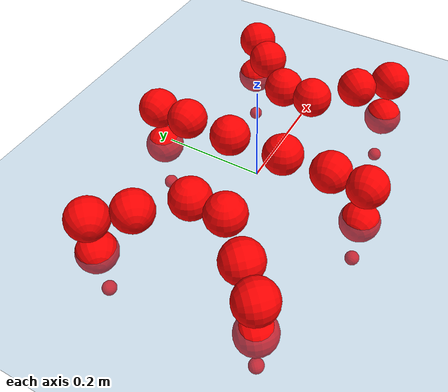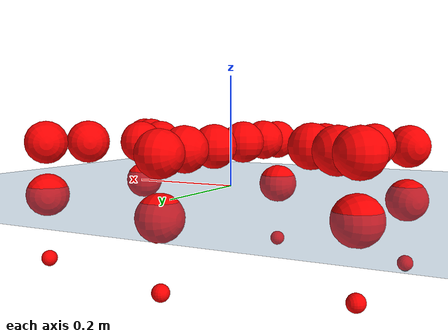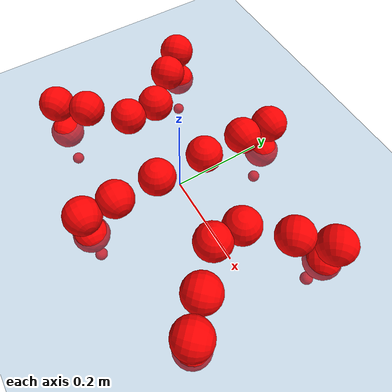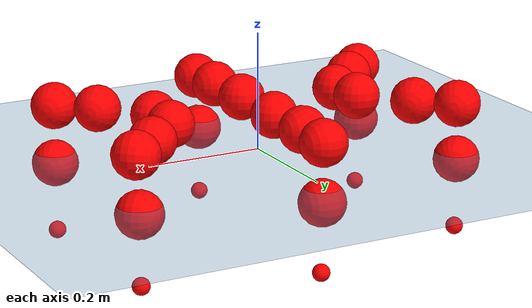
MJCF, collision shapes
<mujoco model="Golem">
  <compiler angle="radian" assetdir="assets" balanceinertia="true" inertiafromgeom="false"/>

  <option timestep="0.005" density="1.2" viscosity="2e-05"/>

  <size nkey="1"/>

  <visual>
    <quality shadowsize="8192"/>
    <map shadowclip="0.5"/>
  </visual>

  <default>
    <default class="/">
      <joint armature="0.01" damping="0.01" frictionloss="0.01"/>
      <geom contype="0" conaffinity="0" group="1" solref="-1000 -80"/>
      <site size="0.01 0.005 0.005" group="5"/>
      <general forcelimited="true" biastype="affine" gainprm="25" biasprm="0 -25 -0.5"/>
      <default class="visual">
        <geom type="mesh" group="2"/>
      </default>
      <default class="collision">
        <geom group="3"/>
      </default>
      <default class="foot">
        <geom size="0.01 0 0" condim="6" group="4" priority="1" solimp="0.015 1 0.01"/>
      </default>
      <default class="reward_collision_sphere">
        <geom group="5" rgba="1 0 0 1"/>
      </default>
    </default>
  </default>

  <asset>
    <texture type="skybox" colorspace="auto" name="//unnamed_texture_0" builtin="gradient" rgb1="0.95 0.95 0.95" rgb2="0.95 0.95 0.95" width="100" height="600"/>
    <texture type="2d" colorspace="auto" name="texplane" builtin="checker" rgb1="0.345 0.575 0.748" rgb2="0.345 0.575 0.748" markrgb="1 1 1" width="512" height="512"/>
    <material name="MatPlane" class="/" texture="texplane" texuniform="true" texrepeat="2 2" specular="0.9"/>
    <mesh name="body" class="/" file="body.stl" scale="0.001 0.001 0.001"/>
    <mesh name="coxa" class="/" file="coxa.stl" scale="0.001 0.001 0.001"/>
    <mesh name="femur" class="/" file="femur.stl" scale="0.001 0.001 0.001"/>
    <mesh name="tibia" class="/" file="tibia.stl" scale="0.001 0.001 0.001"/>
    <mesh name="tarsus" class="/" file="tarsus.stl" scale="0.001 0.001 0.001"/>
  </asset>

  <worldbody>
    <geom name="floor" class="/" size="100 100 0.125" type="plane" group="0" material="MatPlane"/>
    <light name="toplight_shadow" class="/" pos="0 0 5" dir="0.0990148 0.0990148 -0.990148" type="directional" ambient="0.04 0.04 0.04" diffuse="0.55 0.55 0.55" specular="0.12 0.12 0.12"/>
    <light name="toplight_fill" class="/" pos="0 0 5" dir="0.0990148 0.0990148 -0.990148" type="directional" castshadow="false" ambient="0.04 0.04 0.04" diffuse="0.3 0.3 0.3" specular="0.08 0.08 0.08"/>
    <body name="trunk" pos="0.00269939 0.000791154 0.00265506" quat="1 -0.000271188 -0.000335723 0.000203449">
      <inertial pos="-0.00218949 -0.00204133 -0.000731011" quat="0.999997 0.000321855 -0.00227249 -1.19194e-05" mass="3.61093" diaginertia="0.0157881 0.0014218 0.0216051"/>
      <joint name="//unnamed_joint_0" type="free"/>
      <geom name="//unnamed_geom_1" class="/" pos="0 0 0.0743502" quat="1 0 0 0" type="mesh" rgba="0.9 0.9 0.9 1" mesh="body"/>
      <site name="imu" class="/" pos="0.142402 -0.0124298 0.116218" size="0.00979027"/>
      <camera name="track" class="/" pos="0 -1.35259 0" quat="0.707107 0.707107 0 0" mode="trackcom"/>
      <camera name="ego_camera" class="/" pos="0.142878 0 0.116172" quat="-0.5 -0.5 0.5 0.5"/>
      <body name="coxa_RR" pos="-0.193784 -0.0564538 0.0741609" quat="0.383117 0.000168354 -0.000240213 -0.9237">
        <inertial pos="-0.000388343 0.000155368 0.000335001" quat="0.999903 -0.000125676 0.0036524 0.0134652" mass="0.193769" diaginertia="0.0163566 0.00138269 0.021204"/>
        <joint name="coxa_joint_RR" class="/" pos="0 0 0" axis="0.00064819 -0.000651367 -1" stiffness="0.00724825" range="-3.09952 3.14653" armature="0.00979503" damping="0.0102299" frictionloss="0.00948494"/>
        <geom name="//unnamed_geom_2" class="/" type="mesh" rgba="0.2 0.2 0.2 1" mesh="coxa"/>
        <geom name="//unnamed_geom_3" class="reward_collision_sphere" size="0.0391611" pos="-0.0329719 0 0"/>
        <body name="femur_RR" pos="0.0648008 0.00136128 -0.00112697" quat="0.499934 -0.500082 0.499716 0.500268">
          <inertial pos="-0.00195341 0.000857164 -0.00169621" quat="1 -0.000129541 -0.000637751 -0.000265473" mass="0.189192" diaginertia="0.0161647 0.00142385 0.0213133"/>
          <joint name="femur_joint_RR" class="/" pos="0 0 0" axis="-0.000264767 0.00465512 -0.999989" stiffness="0.0012797" range="-3.18854 3.1934" armature="0.00861126" damping="0.00136264" frictionloss="0.00980996"/>
          <geom name="//unnamed_geom_4" class="/" type="mesh" rgba="0.9 0.9 0.9 1" mesh="femur"/>
          <geom name="//unnamed_geom_5" class="reward_collision_sphere" size="0.0391611"/>
          <body name="tibia_RR" pos="0.00359092 -0.0721561 0.00145595" quat="7.88997e-05 1 9.26161e-05 -3.5902e-05">
            <inertial pos="0.00270404 -0.00122273 0.0016198" quat="0.999905 -0.0136428 0.00132514 0.00109477" mass="0.18959" diaginertia="0.0167918 0.00149769 0.0217763"/>
            <joint name="tibia_joint_RR" class="/" pos="0 0 0" axis="0.0105304 -0.00461635 0.999934" range="-3.19595 3.15889" armature="0.00917865" damping="0.0202222" frictionloss="0.010163"/>
            <geom name="//unnamed_geom_6" class="/" type="mesh" rgba="0.2 0.2 0.2 1" mesh="tibia"/>
            <geom name="//unnamed_geom_7" class="reward_collision_sphere" size="0.0391611"/>
            <body name="tarsus_RR" pos="0.0991161 -0.000706061 -0.000708176" quat="1 -1.6333e-06 2.42958e-05 6.917e-05">
              <inertial pos="0.0687123 -0.000740244 -0.00152705" quat="0.492476 0.511447 0.498894 0.496985" mass="0.187271" diaginertia="0.0156102 0.0014522 0.021407"/>
              <joint name="tarsus_joint_RR" class="/" pos="0 0 0" axis="-0.00508244 0.00293103 0.999983" range="-3.13827 3.1379" armature="0.0110876" damping="0.040212" frictionloss="0.0111588"/>
              <geom name="//unnamed_geom_8" class="/" type="mesh" rgba="0.9 0.9 0.9 1" mesh="tarsus"/>
              <geom name="foot_1" class="foot" size="0.0106671" pos="0.123095 0 0" quat="0 -0.707107 0 0.707107"/>
              <geom name="//unnamed_geom_10" class="reward_collision_sphere" size="0.0391611"/>
              <geom name="//unnamed_geom_11" class="reward_collision_sphere" size="0.0146854" pos="0.118149 0 0"/>
              <site name="foot_1" class="foot" pos="0.123095 0 0" quat="0 -0.707107 0 0.707107" size="0.00979027"/>
            </body>
          </body>
        </body>
      </body>
      <body name="coxa_RM" pos="-0.000584786 -0.086786 0.0748057" quat="0.7071 -8.90937e-05 -3.43261e-05 -0.707114">
        <inertial pos="-0.000166172 0.00297632 0.00271637" quat="0.999987 0.000119163 -0.000332264 0.00502878" mass="0.186491" diaginertia="0.0164124 0.00146807 0.0216867"/>
        <joint name="coxa_joint_RM" class="/" pos="0 0 0" axis="0.00894811 0.00443346 -0.99995" stiffness="0.0018992" range="-3.16874 3.09406" armature="0.0101854" damping="0.0273326" frictionloss="0.0101063"/>
        <geom name="//unnamed_geom_12" class="/" type="mesh" rgba="0.2 0.2 0.2 1" mesh="coxa"/>
        <geom name="//unnamed_geom_13" class="reward_collision_sphere" size="0.0391611" pos="-0.0329719 0 0"/>
        <body name="femur_RM" pos="0.061631 0.00215579 -0.000267556" quat="0.499698 -0.499975 0.499991 0.500335">
          <inertial pos="0.00019296 -0.00295589 0.00195613" quat="0.999959 -0.00697386 -0.00493148 -0.00314475" mass="0.188947" diaginertia="0.0159048 0.00137181 0.0211788"/>
          <joint name="femur_joint_RM" class="/" pos="0 0 0" axis="-0.00829584 -0.00436966 -0.999956" range="-3.10225 3.08336" armature="0.00978705" damping="0.000646371" frictionloss="0.0102707"/>
          <geom name="//unnamed_geom_14" class="/" type="mesh" rgba="0.9 0.9 0.9 1" mesh="femur"/>
          <geom name="//unnamed_geom_15" class="reward_collision_sphere" size="0.0391611"/>
          <body name="tibia_RM" pos="0.00243718 -0.0696941 0.000146265" quat="-3.29691e-05 1 -0.000147946 0.00020468">
            <inertial pos="0.000133983 -0.00055639 0.00271121" quat="0.999999 0.00072288 -0.000933202 2.3745e-05" mass="0.184944" diaginertia="0.0161489 0.00140913 0.0210463"/>
            <joint name="tibia_joint_RM" class="/" pos="0 0 0" axis="-0.00308923 -0.00110624 0.999995" stiffness="0.000219644" range="-3.15748 3.196" armature="0.0112437" damping="0.0102147" frictionloss="0.0111073"/>
            <geom name="//unnamed_geom_16" class="/" type="mesh" rgba="0.2 0.2 0.2 1" mesh="tibia"/>
            <geom name="//unnamed_geom_17" class="reward_collision_sphere" size="0.0391611"/>
            <body name="tarsus_RM" pos="0.0936516 -0.00133308 0.00271429" quat="1 -8.0935e-05 -7.31581e-06 -0.000932241">
              <inertial pos="0.0668818 0.000386691 -0.000680304" quat="0.499773 0.499517 0.500549 0.500161" mass="0.193152" diaginertia="0.0170932 0.00143974 0.0216707"/>
              <joint name="tarsus_joint_RM" class="/" pos="0 0 0" axis="0.00646751 0.00377808 0.999972" range="-3.14423 3.16071" armature="0.00938359" damping="0.0120705" frictionloss="0.00983388"/>
              <geom name="//unnamed_geom_18" class="/" type="mesh" rgba="0.9 0.9 0.9 1" mesh="tarsus"/>
              <geom name="foot_2" class="foot" size="0.00916161" pos="0.123095 0 0" quat="0 -0.707107 0 0.707107"/>
              <geom name="//unnamed_geom_20" class="reward_collision_sphere" size="0.0391611"/>
              <geom name="//unnamed_geom_21" class="reward_collision_sphere" size="0.0146854" pos="0.118149 0 0"/>
              <site name="foot_2" class="foot" pos="0.123095 0 0" quat="0 -0.707107 0 0.707107" size="0.00979027"/>
            </body>
          </body>
        </body>
      </body>
      <body name="coxa_RF" pos="0.195934 -0.054529 0.0740419" quat="0.923905 -2.19618e-05 0.00016198 -0.382623">
        <inertial pos="0.00137494 0.000587944 0.000237811" quat="0.999998 0.00178332 -0.000396891 0.000890207" mass="0.190066" diaginertia="0.0161292 0.00144567 0.0209749"/>
        <joint name="coxa_joint_RF" class="/" pos="0 0 0" axis="-0.000975573 -0.00337859 -0.999994" range="-3.19113 3.13518" armature="0.0082945" damping="0.0194303" frictionloss="0.00993767"/>
        <geom name="//unnamed_geom_22" class="/" type="mesh" rgba="0.2 0.2 0.2 1" mesh="coxa"/>
        <geom name="//unnamed_geom_23" class="reward_collision_sphere" size="0.0391611" pos="-0.0329719 0 0"/>
        <body name="femur_RF" pos="0.0651233 0.00154661 0.00255731" quat="0.500169 -0.50014 0.499783 0.499908">
          <inertial pos="0.000774034 -0.00151678 -0.00176987" quat="0.99994 0.00742121 -0.0019282 -0.00784261" mass="0.181554" diaginertia="0.0154108 0.00139747 0.0214524"/>
          <joint name="femur_joint_RF" class="/" pos="0 0 0" axis="0.00122458 0.00125711 -0.999998" range="-3.11576 3.14663" armature="0.010876" damping="0" frictionloss="0.0110792"/>
          <geom name="//unnamed_geom_24" class="/" type="mesh" rgba="0.9 0.9 0.9 1" mesh="femur"/>
          <geom name="//unnamed_geom_25" class="reward_collision_sphere" size="0.0391611"/>
          <body name="tibia_RF" pos="0.00109526 -0.0757606 0.00210668" quat="3.13901e-07 1 -8.05846e-05 -0.000212123">
            <inertial pos="0.00247361 0.00258465 -0.0014532" quat="0.999938 0.00871621 0.00689538 0.00052733" mass="0.188411" diaginertia="0.0158651 0.00136503 0.0216015"/>
            <joint name="tibia_joint_RF" class="/" pos="0 0 0" axis="0.000769724 0.000476635 1" range="-3.14206 3.10718" armature="0.0110155" damping="0" frictionloss="0.00896471"/>
            <geom name="//unnamed_geom_26" class="/" type="mesh" rgba="0.2 0.2 0.2 1" mesh="tibia"/>
            <geom name="//unnamed_geom_27" class="reward_collision_sphere" size="0.0391611"/>
            <body name="tarsus_RF" pos="0.0988231 0.000158444 -0.00197856" quat="1 -7.89475e-05 0.000126886 -3.74792e-05">
              <inertial pos="0.0663863 -0.000142067 -0.00171651" quat="0.502782 0.499174 0.49834 0.499693" mass="0.185329" diaginertia="0.0163094 0.00143696 0.0214944"/>
              <joint name="tarsus_joint_RF" class="/" pos="0 0 0" axis="-0.00595659 0.0064603 0.999961" stiffness="0.0152584" range="-3.13483 3.13944" armature="0.00921033" damping="0.00589804" frictionloss="0.00979183"/>
              <geom name="//unnamed_geom_28" class="/" type="mesh" rgba="0.9 0.9 0.9 1" mesh="tarsus"/>
              <geom name="foot_3" class="foot" size="0.00885723" pos="0.123095 0 0" quat="0 -0.707107 0 0.707107"/>
              <geom name="//unnamed_geom_30" class="reward_collision_sphere" size="0.0391611"/>
              <geom name="//unnamed_geom_31" class="reward_collision_sphere" size="0.0146854" pos="0.118149 0 0"/>
              <site name="foot_3" class="foot" pos="0.123095 0 0" quat="0 -0.707107 0 0.707107" size="0.00979027"/>
            </body>
          </body>
        </body>
      </body>
      <body name="coxa_LR" pos="-0.195207 0.0587506 0.0767668" quat="0.381821 0.000714443 0.000645942 0.924236">
        <inertial pos="-0.0021613 8.42775e-05 0.00344636" quat="0.999962 0.00616079 -0.00590183 -0.00173926" mass="0.190231" diaginertia="0.0162046 0.00142265 0.0209138"/>
        <joint name="coxa_joint_LR" class="/" pos="0 0 0" axis="0.0115269 -0.0102859 -0.999881" range="-3.194 3.14202" armature="0.00944669" damping="0.0190616" frictionloss="0.00943198"/>
        <geom name="//unnamed_geom_32" class="/" type="mesh" rgba="0.2 0.2 0.2 1" mesh="coxa"/>
        <geom name="//unnamed_geom_33" class="reward_collision_sphere" size="0.0391611" pos="-0.0329719 0 0"/>
        <body name="femur_LR" pos="0.0651075 -0.000729141 -0.000502934" quat="0.500114 -0.500335 0.499036 0.500515">
          <inertial pos="0.00255698 -5.46984e-06 0.0015676" quat="0.999999 0.000911901 0.000216935 -0.000619073" mass="0.179573" diaginertia="0.0157257 0.00139985 0.0207314"/>
          <joint name="femur_joint_LR" class="/" pos="0 0 0" axis="0.0127709 0.0082434 0.999884" range="-3.15147 3.10405" armature="0.0109745" damping="0" frictionloss="0.00972362"/>
          <geom name="//unnamed_geom_34" class="/" type="mesh" rgba="0.9 0.9 0.9 1" mesh="femur"/>
          <geom name="//unnamed_geom_35" class="reward_collision_sphere" size="0.0391611"/>
          <body name="tibia_LR" pos="-0.00176539 -0.0741293 -0.00259289" quat="-0.0013068 0.999999 -0.000485041 -0.000345805">
            <inertial pos="0.000134545 0.000301409 0.0021151" quat="0.999911 -0.0112667 0.00439304 0.00562494" mass="0.185736" diaginertia="0.0163167 0.00144617 0.0210223"/>
            <joint name="tibia_joint_LR" class="/" pos="0 0 0" axis="0.00346177 -0.000480392 -0.999994" range="-3.17435 3.19227" armature="0.00859394" damping="0.0216516" frictionloss="0.0110565"/>
            <geom name="//unnamed_geom_36" class="/" type="mesh" rgba="0.2 0.2 0.2 1" mesh="tibia"/>
            <geom name="//unnamed_geom_37" class="reward_collision_sphere" size="0.0391611"/>
            <body name="tarsus_LR" pos="0.0951543 0.00147897 0.00308605" quat="1 0.00052263 -0.000304475 -7.75634e-05">
              <inertial pos="0.0662986 0.000141393 -8.02767e-06" quat="0.506739 0.505583 0.494554 0.492969" mass="0.191477" diaginertia="0.016859 0.00148235 0.0223764"/>
              <joint name="tarsus_joint_LR" class="/" pos="0 0 0" axis="-0.000323836 -0.00174494 -0.999998" stiffness="0.00199041" range="-3.16164 3.1277" armature="0.00980246" damping="0.032897" frictionloss="0.00937324"/>
              <geom name="//unnamed_geom_38" class="/" type="mesh" rgba="0.9 0.9 0.9 1" mesh="tarsus"/>
              <geom name="foot_4" class="foot" size="0.00967287" pos="0.123095 0 0" quat="0.707107 0 -0.707107 0"/>
              <geom name="//unnamed_geom_40" class="reward_collision_sphere" size="0.0391611"/>
              <geom name="//unnamed_geom_41" class="reward_collision_sphere" size="0.0146854" pos="0.118149 0 0"/>
              <site name="foot_4" class="foot" pos="0.123095 0 0" quat="0.707107 0 -0.707107 0" size="0.00979027"/>
            </body>
          </body>
        </body>
      </body>
      <body name="coxa_LM" pos="-0.00123422 0.0911444 0.0724655" quat="0.707302 -0.00126194 0.000102172 0.70691">
        <inertial pos="-0.00101921 -0.00231286 -0.00197492" quat="0.999999 -0.00136883 -0.00025251 -7.13156e-05" mass="0.187385" diaginertia="0.0157246 0.00141024 0.0212821"/>
        <joint name="coxa_joint_LM" class="/" pos="0 0 0" axis="0.001428 0.00105325 -0.999998" range="-3.14414 3.1325" armature="0.00995219" damping="0.0128427" frictionloss="0.00856609"/>
        <geom name="//unnamed_geom_42" class="/" type="mesh" rgba="0.2 0.2 0.2 1" mesh="coxa"/>
        <geom name="//unnamed_geom_43" class="reward_collision_sphere" size="0.0391611" pos="-0.0329719 0 0"/>
        <body name="femur_LM" pos="0.0631176 -0.000387853 0.000990199" quat="0.500009 -0.500006 0.499996 0.499989">
          <inertial pos="0.0019577 0.002599 0.00073752" quat="0.999991 -0.00214492 -0.00338392 0.00127639" mass="0.18784" diaginertia="0.0166295 0.00140993 0.0204775"/>
          <joint name="femur_joint_LM" class="/" pos="0 0 0" axis="0.00561151 -0.00854254 0.999948" stiffness="0.00355426" range="-3.1349 3.10116" armature="0.0113058" damping="0" frictionloss="0.0109636"/>
          <geom name="//unnamed_geom_44" class="/" type="mesh" rgba="0.9 0.9 0.9 1" mesh="femur"/>
          <geom name="//unnamed_geom_45" class="reward_collision_sphere" size="0.0391611"/>
          <body name="tibia_LM" pos="0.00247825 -0.0692148 -0.00166263" quat="-6.01264e-05 1 0.000307936 3.67341e-05">
            <inertial pos="-0.00242182 -0.000241522 -0.000549521" quat="0.999994 0.00249505 -0.00238935 0.000282363" mass="0.18993" diaginertia="0.0158304 0.0014313 0.020728"/>
            <joint name="tibia_joint_LM" class="/" pos="0 0 0" axis="-0.00891123 -0.00143294 -0.999959" stiffness="0.0032886" range="-3.12383 3.12233" armature="0.0110399" damping="0.00239064" frictionloss="0.00969215"/>
            <geom name="//unnamed_geom_46" class="/" type="mesh" rgba="0.2 0.2 0.2 1" mesh="tibia"/>
            <geom name="//unnamed_geom_47" class="reward_collision_sphere" size="0.0391611"/>
            <body name="tarsus_LM" pos="0.0992729 -0.000657352 0.000638374" quat="0.999999 -0.00108368 -0.000462426 0.00013972">
              <inertial pos="0.0626727 -0.000861825 -0.00142969" quat="0.500101 0.500058 0.49994 0.4999" mass="0.184857" diaginertia="0.0154232 0.00134011 0.0198683"/>
              <joint name="tarsus_joint_LM" class="/" pos="0 0 0" axis="0.000433962 -0.00455268 -0.99999" stiffness="0.00913142" range="-3.12041 3.11886" armature="0.00842486" damping="0.0286322" frictionloss="0.00990003"/>
              <geom name="//unnamed_geom_48" class="/" type="mesh" rgba="0.9 0.9 0.9 1" mesh="tarsus"/>
              <geom name="foot_5" class="foot" size="0.00960801" pos="0.123095 0 0" quat="0.707107 0 -0.707107 0"/>
              <geom name="//unnamed_geom_50" class="reward_collision_sphere" size="0.0391611"/>
              <geom name="//unnamed_geom_51" class="reward_collision_sphere" size="0.0146854" pos="0.118149 0 0"/>
              <site name="foot_5" class="foot" pos="0.123095 0 0" quat="0.707107 0 -0.707107 0" size="0.00979027"/>
            </body>
          </body>
        </body>
      </body>
      <body name="coxa_LF" pos="0.197006 0.056083 0.0748065" quat="0.923917 0.000224952 7.47441e-05 0.382593">
        <inertial pos="0.00246306 -0.0016987 0.00254911" quat="0.999995 0.0023916 0.00226859 0.000175274" mass="0.189692" diaginertia="0.0156212 0.00143667 0.0214529"/>
        <joint name="coxa_joint_LF" class="/" pos="0 0 0" axis="-0.00634444 0.0197624 -0.999785" stiffness="0.0155428" range="-3.14304 3.13518" armature="0.00931565" damping="0.00735976" frictionloss="0.0103057"/>
        <geom name="//unnamed_geom_52" class="/" type="mesh" rgba="0.2 0.2 0.2 1" mesh="coxa"/>
        <geom name="//unnamed_geom_53" class="reward_collision_sphere" size="0.0391611" pos="-0.0329719 0 0"/>
        <body name="femur_LF" pos="0.0657852 0.00389414 0.00197837" quat="0.500326 -0.499718 0.499938 0.500018">
          <inertial pos="0.00106884 -0.00285469 0.000169719" quat="0.999919 0.00595797 0.0106984 0.00348512" mass="0.181961" diaginertia="0.0160265 0.0014187 0.0215122"/>
          <joint name="femur_joint_LF" class="/" pos="0 0 0" axis="-0.00491232 0.0100907 0.999937" range="-3.14359 3.12301" armature="0.0110262" damping="0.0137188" frictionloss="0.00934"/>
          <geom name="//unnamed_geom_54" class="/" type="mesh" rgba="0.9 0.9 0.9 1" mesh="femur"/>
          <geom name="//unnamed_geom_55" class="reward_collision_sphere" size="0.0391611"/>
          <body name="tibia_LF" pos="4.8129e-05 -0.075578 0.000613063" quat="-0.000719262 0.999999 -0.00101002 0.000232141">
            <inertial pos="-0.000875628 0.00233969 6.74532e-05" quat="0.999991 0.00249558 0.00310791 0.00173897" mass="0.187428" diaginertia="0.0161778 0.00139231 0.021219"/>
            <joint name="tibia_joint_LF" class="/" pos="0 0 0" axis="-0.00681385 -0.00232844 -0.999974" stiffness="0.00274594" range="-3.19322 3.18547" armature="0.00958082" damping="0.00722017" frictionloss="0.0109334"/>
            <geom name="//unnamed_geom_56" class="/" type="mesh" rgba="0.2 0.2 0.2 1" mesh="tibia"/>
            <geom name="//unnamed_geom_57" class="reward_collision_sphere" size="0.0391611"/>
            <body name="tarsus_LF" pos="0.0958383 -0.000322832 -0.00414698" quat="0.999999 -0.00108627 0.000545061 -0.000802499">
              <inertial pos="0.0645541 0.00332208 0.000851762" quat="0.501571 0.50004 0.499122 0.499263" mass="0.181173" diaginertia="0.01525 0.00134696 0.0207733"/>
              <joint name="tarsus_joint_LF" class="/" pos="0 0 0" axis="0.0166327 -0.00188884 -0.99986" stiffness="0.0273652" range="-3.15056 3.14417" armature="0.0099475" damping="0.00414644" frictionloss="0.0101853"/>
              <geom name="//unnamed_geom_58" class="/" type="mesh" rgba="0.9 0.9 0.9 1" mesh="tarsus"/>
              <geom name="foot_6" class="foot" size="0.0100555" pos="0.123095 0 0" quat="0.707107 0 -0.707107 0"/>
              <geom name="//unnamed_geom_60" class="reward_collision_sphere" size="0.0391611"/>
              <geom name="//unnamed_geom_61" class="reward_collision_sphere" size="0.0146854" pos="0.118149 0 0"/>
              <site name="foot_6" class="foot" pos="0.123095 0 0" quat="0.707107 0 -0.707107 0" size="0.00979027"/>
            </body>
          </body>
        </body>
      </body>
    </body>
  </worldbody>

  <contact>
    <pair class="/" geom1="floor" geom2="foot_1" name="//unnamed_contact_0"/>
    <pair class="/" geom1="floor" geom2="foot_2" name="//unnamed_contact_1"/>
    <pair class="/" geom1="floor" geom2="foot_3" name="//unnamed_contact_2"/>
    <pair class="/" geom1="floor" geom2="foot_4" name="//unnamed_contact_3"/>
    <pair class="/" geom1="floor" geom2="foot_5" name="//unnamed_contact_4"/>
    <pair class="/" geom1="floor" geom2="foot_6" name="//unnamed_contact_5"/>
  </contact>

  <actuator>
    <general name="coxa_joint_RR" class="/" joint="coxa_joint_RR" forcerange="-7.88996 7.88996" gainprm="24.0277" biasprm="0 -24.0277 -0.521645"/>
    <general name="femur_joint_RR" class="/" joint="femur_joint_RR" forcerange="-6.39638 6.39638" gainprm="24.0277" biasprm="0 -24.0277 -0.521645"/>
    <general name="tibia_joint_RR" class="/" joint="tibia_joint_RR" forcerange="-7.15799 7.15799" gainprm="24.0277" biasprm="0 -24.0277 -0.521645"/>
    <general name="tarsus_joint_RR" class="/" joint="tarsus_joint_RR" forcerange="-6.47375 6.47375" gainprm="24.0277" biasprm="0 -24.0277 -0.521645"/>
    <general name="coxa_joint_RM" class="/" joint="coxa_joint_RM" forcerange="-7.10482 7.10482" gainprm="24.0277" biasprm="0 -24.0277 -0.521645"/>
    <general name="femur_joint_RM" class="/" joint="femur_joint_RM" forcerange="-6.89825 6.89825" gainprm="24.0277" biasprm="0 -24.0277 -0.521645"/>
    <general name="tibia_joint_RM" class="/" joint="tibia_joint_RM" forcerange="-7.32942 7.32942" gainprm="24.0277" biasprm="0 -24.0277 -0.521645"/>
    <general name="tarsus_joint_RM" class="/" joint="tarsus_joint_RM" forcerange="-6.54663 6.54663" gainprm="24.0277" biasprm="0 -24.0277 -0.521645"/>
    <general name="coxa_joint_RF" class="/" joint="coxa_joint_RF" forcerange="-7.37274 7.37274" gainprm="24.0277" biasprm="0 -24.0277 -0.521645"/>
    <general name="femur_joint_RF" class="/" joint="femur_joint_RF" forcerange="-6.96218 6.96218" gainprm="24.0277" biasprm="0 -24.0277 -0.521645"/>
    <general name="tibia_joint_RF" class="/" joint="tibia_joint_RF" forcerange="-7.89944 7.89944" gainprm="24.0277" biasprm="0 -24.0277 -0.521645"/>
    <general name="tarsus_joint_RF" class="/" joint="tarsus_joint_RF" forcerange="-6.98046 6.98046" gainprm="24.0277" biasprm="0 -24.0277 -0.521645"/>
    <general name="coxa_joint_LR" class="/" joint="coxa_joint_LR" forcerange="-6.76218 6.76218" gainprm="24.0277" biasprm="0 -24.0277 -0.521645"/>
    <general name="femur_joint_LR" class="/" joint="femur_joint_LR" forcerange="-7.86051 7.86051" gainprm="24.0277" biasprm="0 -24.0277 -0.521645"/>
    <general name="tibia_joint_LR" class="/" joint="tibia_joint_LR" forcerange="-7.86583 7.86583" gainprm="24.0277" biasprm="0 -24.0277 -0.521645"/>
    <general name="tarsus_joint_LR" class="/" joint="tarsus_joint_LR" forcerange="-7.2399 7.2399" gainprm="24.0277" biasprm="0 -24.0277 -0.521645"/>
    <general name="coxa_joint_LM" class="/" joint="coxa_joint_LM" forcerange="-7.90337 7.90337" gainprm="24.0277" biasprm="0 -24.0277 -0.521645"/>
    <general name="femur_joint_LM" class="/" joint="femur_joint_LM" forcerange="-7.06733 7.06733" gainprm="24.0277" biasprm="0 -24.0277 -0.521645"/>
    <general name="tibia_joint_LM" class="/" joint="tibia_joint_LM" forcerange="-7.03984 7.03984" gainprm="24.0277" biasprm="0 -24.0277 -0.521645"/>
    <general name="tarsus_joint_LM" class="/" joint="tarsus_joint_LM" forcerange="-6.54275 6.54275" gainprm="24.0277" biasprm="0 -24.0277 -0.521645"/>
    <general name="coxa_joint_LF" class="/" joint="coxa_joint_LF" forcerange="-7.83066 7.83066" gainprm="24.0277" biasprm="0 -24.0277 -0.521645"/>
    <general name="femur_joint_LF" class="/" joint="femur_joint_LF" forcerange="-6.816 6.816" gainprm="24.0277" biasprm="0 -24.0277 -0.521645"/>
    <general name="tibia_joint_LF" class="/" joint="tibia_joint_LF" forcerange="-6.90459 6.90459" gainprm="24.0277" biasprm="0 -24.0277 -0.521645"/>
    <general name="tarsus_joint_LF" class="/" joint="tarsus_joint_LF" forcerange="-7.12446 7.12446" gainprm="24.0277" biasprm="0 -24.0277 -0.521645"/>
  </actuator>

  <sensor>
    <gyro site="imu" name="imu_angular_velocity"/>
    <velocimeter site="imu" name="imu_linear_velocity"/>
    <framelinvel objtype="site" objname="foot_1" name="foot_1_global_linear_velocity"/>
    <framelinvel objtype="site" objname="foot_2" name="foot_2_global_linear_velocity"/>
    <framelinvel objtype="site" objname="foot_3" name="foot_3_global_linear_velocity"/>
    <framelinvel objtype="site" objname="foot_4" name="foot_4_global_linear_velocity"/>
    <framelinvel objtype="site" objname="foot_5" name="foot_5_global_linear_velocity"/>
    <framelinvel objtype="site" objname="foot_6" name="foot_6_global_linear_velocity"/>
  </sensor>

  <keyframe>
    <key name="home" qpos="0 0 0.1457 1 0 0 0 0 0 0 0 0 0 0 0 0 0 0 0 0 0 0 0 0 0 0 0 0 0 0 0"/>
  </keyframe>
</mujoco>
